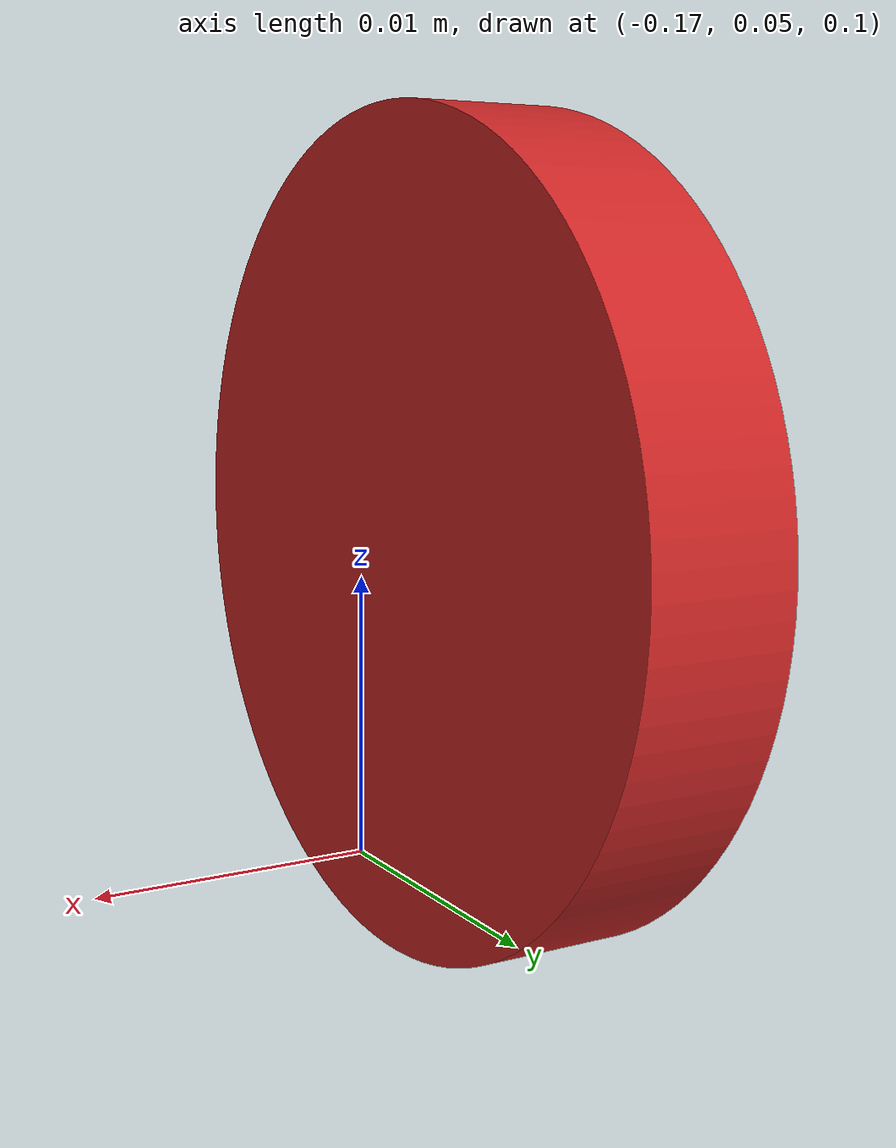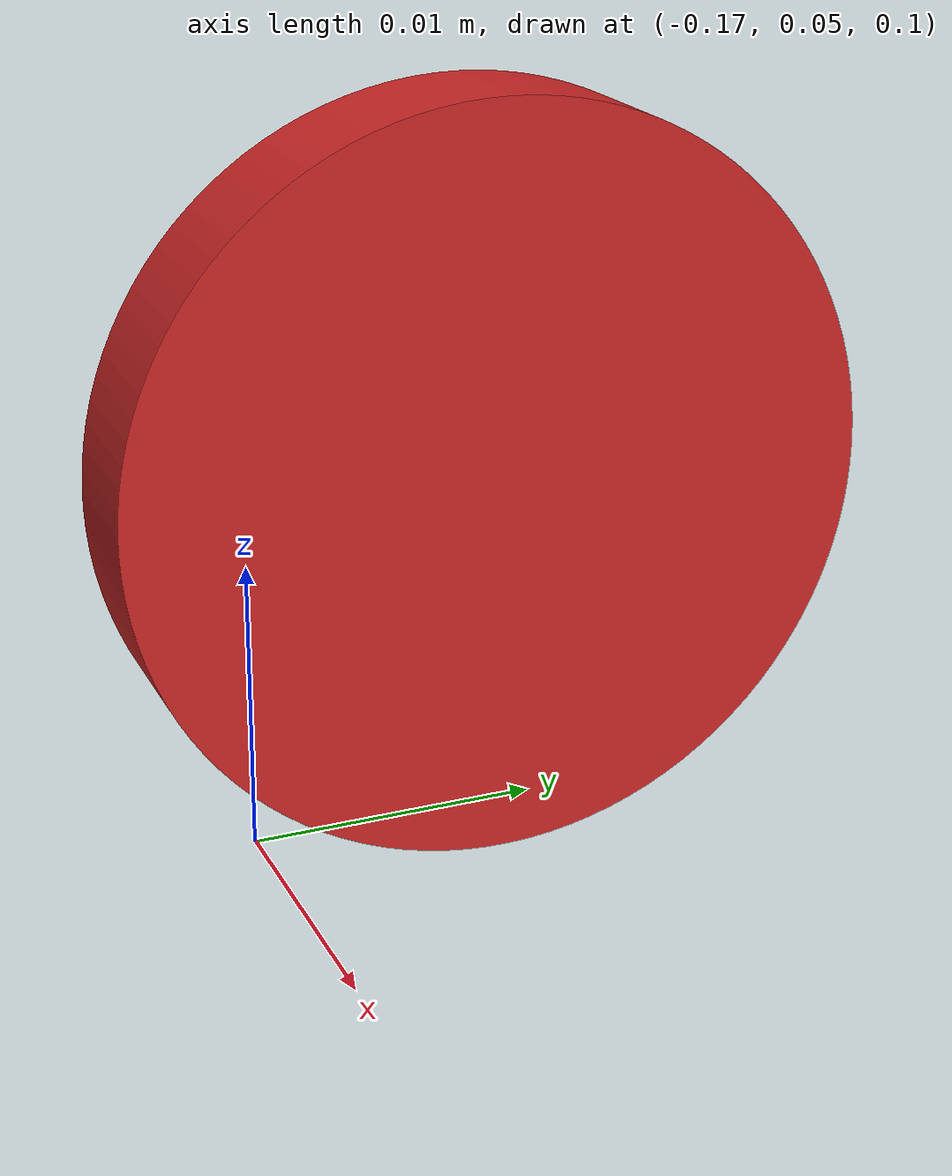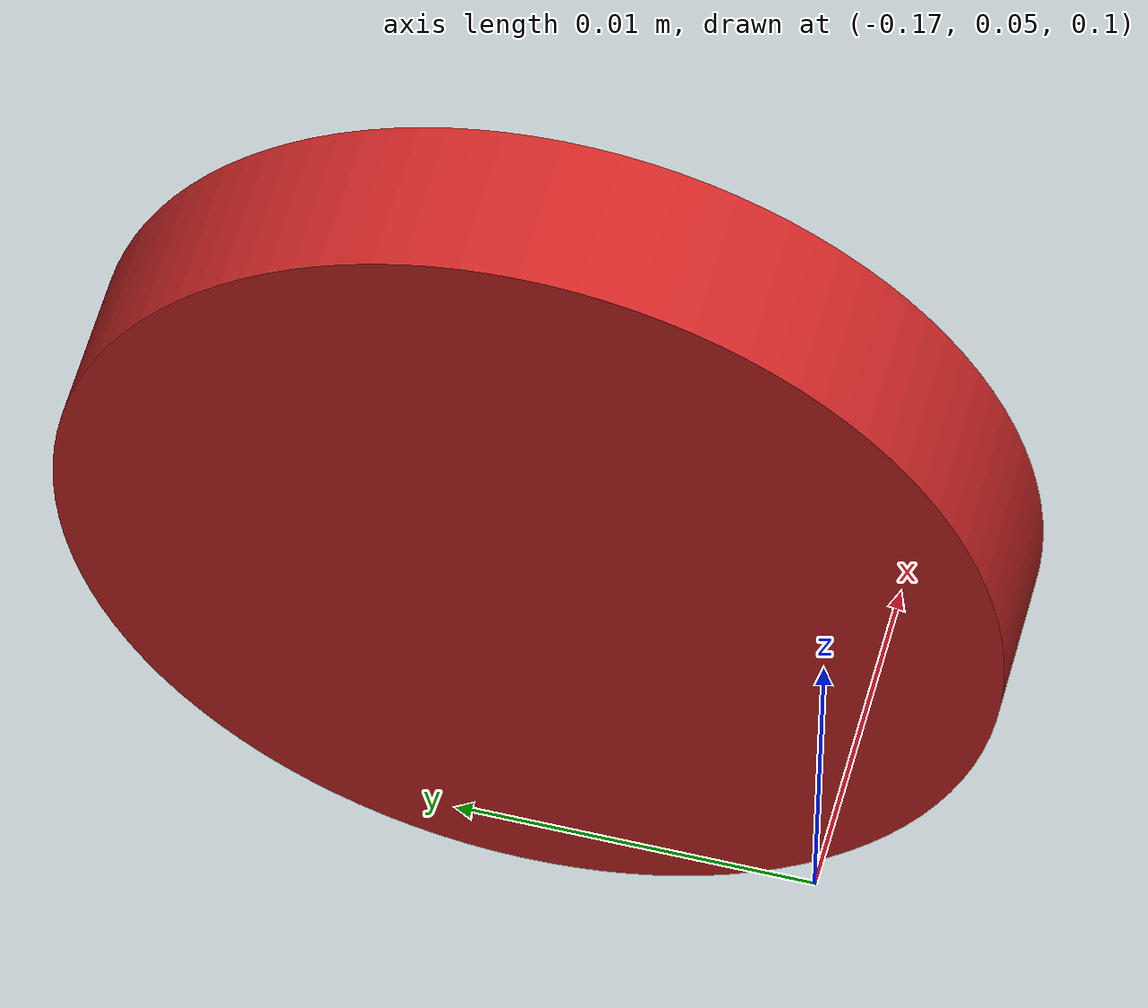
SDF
<?xml version='1.0' ?>
<sdf version='1.7'>
  <model name='chip'>
    <static>false</static>
    <link name='base_link'>
      <inertial>
        <pose>-0.168884 0.057753 0.1127 0 0 0</pose>
        <mass>0.0178994</mass>
        <inertia>
          <ixx>1e-06</ixx>
          <ixy>0</ixy>
          <ixz>0</ixz>
          <iyy>1e-06</iyy>
          <iyz>0</iyz>
          <izz>1e-06</izz>
        </inertia>
      </inertial>

      <collision name='base_link_collision'>
        <pose>0 0 0 0 0 0</pose>
        <geometry>
          <mesh>
            <scale>0.001 0.001 0.001</scale>
            <uri>meshes/chip.stl</uri>
          </mesh>
        </geometry>
        <surface>
          <contact>
            <ode/>
          </contact>
          <friction>
            <ode>
              <mu>0.2</mu>
              <mu2>0.2</mu2>
            </ode>
          </friction>
        </surface>
      </collision>

      <visual name='base_link_visual'>
        <pose>0 0 0 0 0 0</pose>
        <geometry>
          <mesh>
            <scale>0.001 0.001 0.001</scale>
            <uri>meshes/chip.stl</uri>
          </mesh>
        </geometry>
        <material>
          <script>
            <name>Gazebo/Red</name>
            <uri>file://media/materials/scripts/gazebo.material</uri>
          </script>
        </material>
      </visual>
    </link>
  </model>
</sdf>
